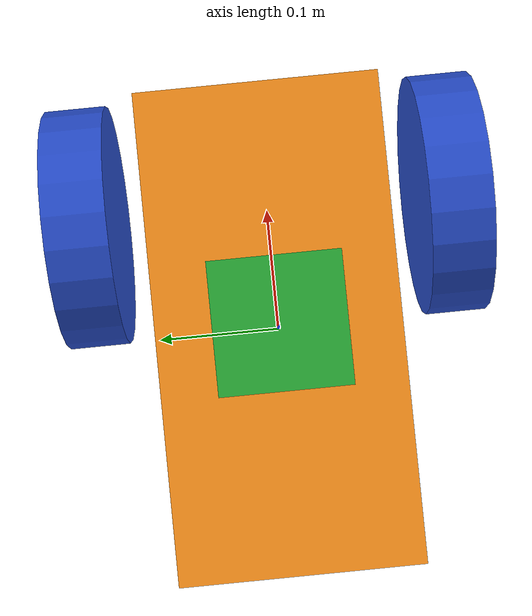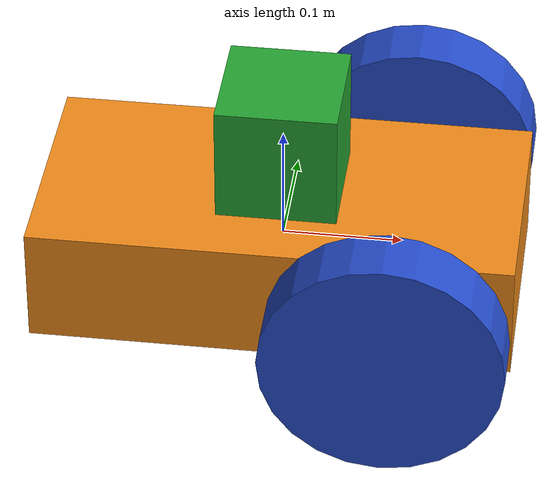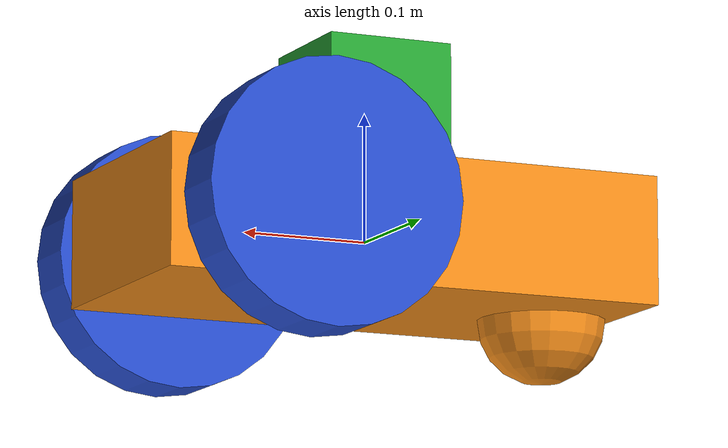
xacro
<?xml version='1.0'?>

<robot name="autobot" xmlns:xacro="http://www.ros.org/wiki/xacro">
	<!--calls the macros for robot properties and Gazebo plugin as well as set global parameters for mass and size of IMU and Camera-->

  <xacro:property name="cameraSize"         value="0.1"/>
  <xacro:property name="cameraMass"         value="0.1"/>
  <xacro:property name="imuSize"            value="0.05"/>
  <xacro:property name="imuMass"            value="0.1"/>

  <xacro:property name="r200_cam_rgb_px" value="0.005"/>
  <xacro:property name="r200_cam_rgb_py" value="0.018"/>
  <xacro:property name="r200_cam_rgb_pz" value="0.013"/>
  <xacro:property name="r200_cam_depth_offset" value="0.01"/>

  <xacro:include filename="$(find autobot)/src/autobot_description/src/urdf/src/autobot_gazebo_plugins.xacro" />
  <xacro:include filename="$(find autobot)/src/autobot_description/src/urdf/src/materials.xacro" />
  <xacro:include filename="$(find autobot)/src/autobot_description/src/urdf/src/macros.xacro" />
		<!--creates the geometry of the differential drive robot which consists of  a rectangular chassis 0.4x0.2x0.1 m, and two cylindrical wheels of radius 0.1m and length 0.05m-->
		<!--Source: richard05. 2020. mybot_ws. https://github.com/richardw05/mybot_ws. accessed: 20 September 2020-->

<!--Chassis geometry. The chassis is used as the BaseLink to which the odom from differential drive Gazebo plugin is linked, making it possible to control the robot through cmd-vel when launching teleop-->

  <link name='chassis'>
    <pose>0 0.1 0 0 0 0</pose>

    <inertial>
      <mass value="10.0"/>
      <origin xyz="0 0 0.1" rpy="0 0 0"/>
      <inertia
          ixx="0.5" ixy="0" ixz="0"
          iyy="1.0" iyz="0"
          izz="0.1"/>
    </inertial>

    <collision name='collision_chassis'>
      <geometry>
        <box size=".4 .2 .1"/>
      </geometry>
    </collision>

    <visual name='chassis_visual'>
      <origin xyz="0 0 0" rpy=" 0 0 0"/>
      <geometry>
        <box size=".4 .2 .1"/>
      </geometry>
    </visual>

    <collision name='caster_collision'>
      <origin xyz="-0.15 0 -0.05" rpy=" 0 0 0"/>
      <geometry>
        <sphere radius="0.05"/>
      </geometry>
      <surface>
        <friction>
          <ode>
            <mu>0</mu>
            <mu2>0</mu2>
            <slip1>1.0</slip1>
            <slip2>1.0</slip2>
          </ode>
        </friction>
      </surface>
    </collision>

    <visual name='caster_visual'>
      <origin xyz="-0.15 0 -0.05" rpy=" 0 0 0"/>
      <geometry>
        <sphere radius="0.05"/>
      </geometry>
    </visual>
  </link>

	<!--Wheel geometry description-->

  <link name="left_wheel">
    <!--origin xyz="0.1 0.13 0.1" rpy="0 1.5707 1.5707"/-->
    <collision name="collision">
      <origin xyz="0 0 0" rpy="0 1.5707 1.5707"/>
      <geometry>
        <cylinder radius="0.1" length="0.05"/>
      </geometry>
    </collision>
    <visual name="left_wheel_visual">
      <origin xyz="0 0 0" rpy="0 1.5707 1.5707"/>
      <geometry>
        <cylinder radius="0.1" length="0.05"/>
      </geometry>
    </visual>
    <inertial>
      <origin xyz="0 0 0" rpy="0 1.5707 1.5707"/>
      <mass value="5"/>
      <cylinder_inertia m="5" r="0.1" h="0.05"/>
      <inertia
        ixx="1.0" ixy="0.0" ixz="0.0"
        iyy="1.0" iyz="0.0"
        izz="1.0"/>
    </inertial>
  </link>

  <link name="right_wheel">
    <!--origin xyz="0.1 -0.13 0.1" rpy="0 1.5707 1.5707"/-->
    <collision name="collision">
      <origin xyz="0 0 0" rpy="0 1.5707 1.5707"/>
      <geometry>
        <cylinder radius="0.1" length="0.05"/>
      </geometry>
    </collision>
    <visual name="right_wheel_visual">
      <origin xyz="0 0 0" rpy="0 1.5707 1.5707"/>
      <geometry>
        <cylinder radius="0.1" length="0.05"/>
      </geometry>
    </visual>
    <inertial>
      <origin xyz="0 0 0" rpy="0 1.5707 1.5707"/>
      <mass value="5"/>
      <cylinder_inertia m="5" r="0.1" h="0.05"/>
      <inertia
        ixx="1.0" ixy="0.0" ixz="0.0"
        iyy="1.0" iyz="0.0"
        izz="1.0"/>
    </inertial>
  </link>

  <joint type="continuous" name="left_wheel_hinge">
    <origin xyz="0.1 0.15 0" rpy="0 0 0"/>
    <child link="left_wheel"/>
    <parent link="chassis"/>
    <axis xyz="0 1 0" rpy="0 0 0"/>
    <limit effort="10000" velocity="1000"/>
    <joint_properties damping="0.0" friction="0.0"/>
  </joint>

  <joint type="continuous" name="right_wheel_hinge">
    <origin xyz="0.1 -0.15 0" rpy="0 0 0"/>
    <child link="right_wheel"/>
    <parent link="chassis"/>
    <axis xyz="0 1 0" rpy="0 0 0"/>
    <limit effort="10000" velocity="1000"/>
    <joint_properties damping="0.0" friction="0.0"/>
  </joint>

	<!--create the imu0 model which links to the imu plugin for Gazebo-->
  <link name="imu_link">
    <collision>
      <origin xyz="0 0 0" rpy="0 0 0"/>
      <geometry>
        <box size="0.1 0.1 0.1"/>
      </geometry>
    </collision>

    <visual>
      <origin xyz="0 0 0" rpy="0 0 0"/>
      <geometry>
        <box size=".01 .01 .01"/>
      </geometry>
      <material name="green"/>
    </visual>

    <inertial>
      <mass value="${imuMass}" />
      <origin xyz="0 0 0" rpy="0 0 0"/>
      <box_inertia m="${imuMass}" x="0.4" y="0.2" z="0.1" />
      <inertia ixx="1e-6" ixy="0" ixz="0" iyy="1e-6" iyz="0" izz="1e-6" />
    </inertial>
  </link>

  <joint name="imu_joint" type="fixed">
    <axis xyz="0 0 0" />
    <origin xyz="0 0 0" rpy="0 0 0"/>
    <parent link="chassis"/>
    <child link="imu_link"/>
  </joint>

	<!--camera sensor-->
  <joint name="camera_joint" type="fixed">
     <origin xyz="0 0 0.1" rpy="0 0 0"/>
    <parent link="chassis"/>
    <child link="camera_link"/>
  </joint>

  <link name="camera_link">
    <collision>
      <origin xyz="0 0 0.1" rpy="0 0 0"/>
      <geometry>
        <box size="${cameraSize} ${cameraSize} ${cameraSize}"/>
      </geometry>
    </collision>

    <visual>
      <origin xyz="0 0 0" rpy="0 0 0"/>
      <geometry>
        <box size="${cameraSize} ${cameraSize} ${cameraSize}"/>
      </geometry>
      <material name="green"/>
    </visual>

    <inertial>
      <mass value="${cameraMass}" />
      <origin xyz="0 0 0" rpy="0 0 0"/>
      <box_inertia m="${cameraMass}" x="${cameraSize}" y="${cameraSize}" z="${cameraSize}" />
      <inertia ixx="1e-6" ixy="0" ixz="0" iyy="1e-6" iyz="0" izz="1e-6" />
    </inertial>
  </link>

  <joint name="camera_rgb_joint" type="fixed">
    <origin xyz="${r200_cam_rgb_px} ${r200_cam_rgb_py} ${r200_cam_rgb_pz}" rpy="0 0 0"/>
    <parent link="camera_link"/>
    <child link="camera_rgb_frame"/>
  </joint>
  <link name="camera_rgb_frame"/>

  <joint name="camera_rgb_optical_joint" type="fixed">
    <origin xyz="0 0 0.1" rpy="0 0 0"/>
    <parent link="camera_rgb_frame"/>
    <child link="camera_rgb_optical_frame"/>
  </joint>

  <link name="camera_rgb_optical_frame"/>

  <joint name="camera_depth_joint" type="fixed">
    <origin xyz="${r200_cam_rgb_px} ${r200_cam_rgb_py + r200_cam_depth_offset} ${r200_cam_rgb_pz}" rpy="0 0 0"/>
    <parent link="camera_link"/>
    <child link="camera_depth_frame"/>
  </joint>
  <link name="camera_depth_frame"/>

  <joint name="camera_depth_optical_joint" type="fixed">
    <origin xyz="0 0 0.1" rpy="0 0 0"/>
    <parent link="camera_depth_frame"/>
    <child link="camera_depth_optical_frame"/>
  </joint>
  <link name="camera_depth_optical_frame"/>

</robot>

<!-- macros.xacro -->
<!--macro for wheel which includes intertia calculation for the cylinder-->
<!--Source: richard05. 2020. mybot_ws. https://github.com/richardw05/mybot_ws. accessed: 20 September 2020-->
<robot>
  <macro name="cylinder_inertia" params="m r h">
    <inertia  ixx="${m*(3*r*r+h*h)/12}" ixy = "0" ixz = "0"
      iyy="${m*(3*r*r+h*h)/12}" iyz = "0"
      izz="${m*r*r/2}"
    />
  </macro>

  <macro name="box_inertia" params="m x y z">
    <inertia  ixx="${m*(y*y+z*z)/12}" ixy = "0" ixz = "0"
      iyy="${m*(x*x+z*z)/12}" iyz = "0"
      izz="${m*(x*x+z*z)/12}"
    />
  </macro>

  <macro name="sphere_inertia" params="m r">
    <inertia  ixx="${2*m*r*r/5}" ixy = "0" ixz = "0"
      iyy="${2*m*r*r/5}" iyz = "0"
      izz="${2*m*r*r/5}"
    />
  </macro>

  <macro name="wheel" params="lr tY">

    <link name="${lr}_wheel">
      <collision>
        <origin xyz="0 0 0" rpy="0 ${PI/2} ${PI/2}" />
        <geometry>
          <cylinder length="${wheelWidth}" radius="${wheelRadius}"/>
        </geometry>
      </collision>

      <visual>
        <origin xyz="0 0 0" rpy="0 ${PI/2} ${PI/2}" />
        <geometry>
          <cylinder length="${wheelWidth}" radius="${wheelRadius}"/>
        </geometry>
        <material name="black"/>
      </visual>

      <inertial>
        <origin xyz="0 0 0" rpy="0 ${PI/2} ${PI/2}" />
        <mass value="${wheelMass}"/>
        <cylinder_inertia m="${wheelMass}" r="${wheelRadius}" h="${wheelWidth}"/>
      </inertial>
    </link>

    <gazebo reference="${lr}_wheel">
      <mu1 value="1.0"/>
      <mu2 value="1.0"/>
      <kp  value="10000000.0" />
      <kd  value="1.0" />
      <fdir1 value="1 0 0"/>
      <material>Gazebo/Black</material>
    </gazebo>

    <joint name="${lr}_wheel_hinge" type="continuous">
      <parent link="chassis"/>
      <child link="${lr}_wheel"/>
    <origin xyz="${-wheelPos+chassisLength/2} ${tY*wheelWidth/2+tY*chassisWidth/2} ${wheelRadius}" rpy="0 0 0" />
      <axis xyz="0 1 0" rpy="0 0 0" />
      <limit effort="10000" velocity="1000"/>
      <joint_properties damping="1.0" friction="1.0"/>
    </joint>

    <transmission name="${lr}_trans">
      <type>transmission_interface/SimpleTransmission</type>
      <joint name="${lr}_wheel_hinge">
        <hardwareInterface>EffortJointInterface</hardwareInterface>
      </joint>
      <actuator name="${lr}Motor">
        <hardwareInterface>EffortJointInterface</hardwareInterface>
        <mechanicalReduction>10</mechanicalReduction>
      </actuator>
    </transmission>

  </macro>

</robot>
